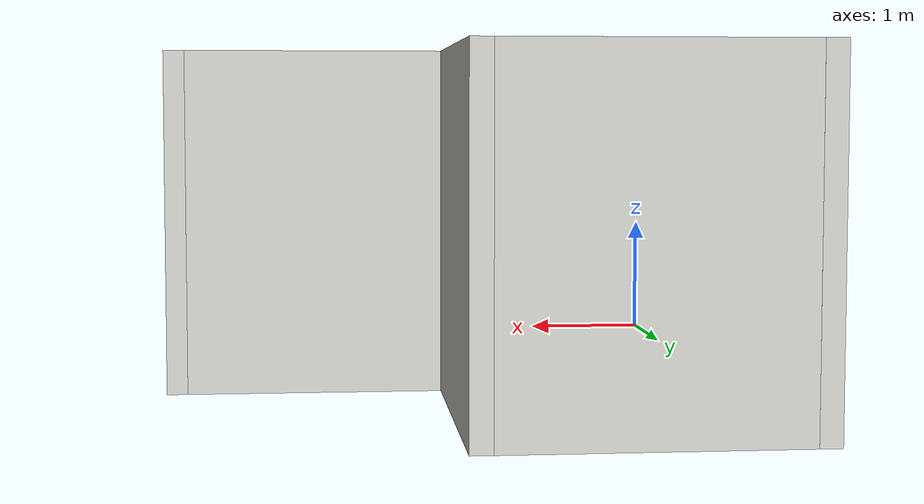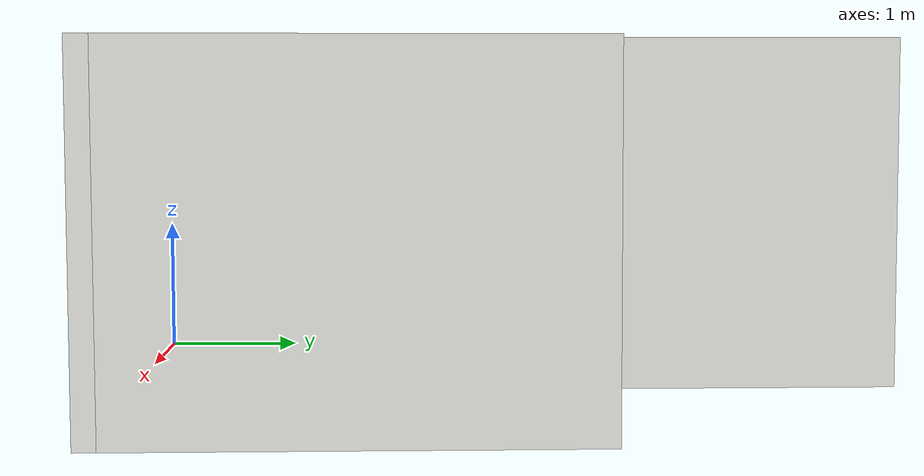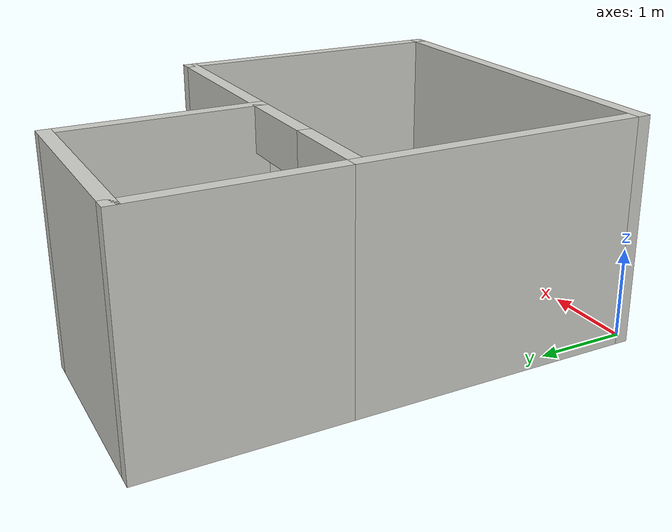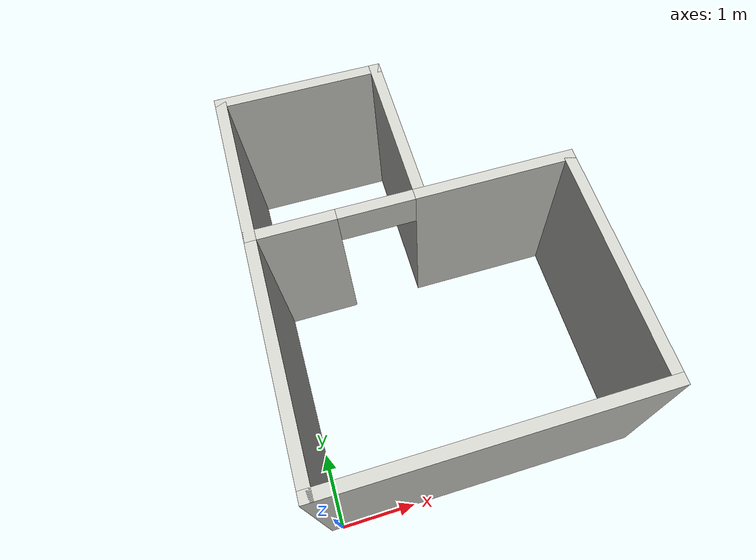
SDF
<?xml version='1.0'?>
<sdf version='1.6'>
  <model name='building'>
    <pose frame=''>2 2.73062 0 0 -0 0</pose>
    <link name='Wall_10'>
      <collision name='Wall_10_Collision'>
        <geometry>
          <box>
            <size>4.3 0.15 2.5</size>
          </box>
        </geometry>
        <pose frame=''>0 0 1.25 0 -0 0</pose>
      </collision>
      <visual name='Wall_10_Visual'>
        <pose frame=''>0 0 1.25 0 -0 0</pose>
        <geometry>
          <box>
            <size>4.3 0.15 2.5</size>
          </box>
        </geometry>
        <material>
          <script>
            <uri>file://media/materials/scripts/gazebo.material</uri>
            <name>Gazebo/CeilingTiled</name>
          </script>
          <ambient>0.533333 0.541176 0.521569 1</ambient>
        </material>
        <meta>
          <layer>0</layer>
        </meta>
      </visual>
      <pose frame=''>0 -2.65563 0 0 -0 3.14159</pose>
    </link>
    <link name='Wall_13'>
      <collision name='Wall_13_Collision'>
        <geometry>
          <box>
            <size>2.3115 0.15 2.5</size>
          </box>
        </geometry>
        <pose frame=''>0 0 1.25 0 -0 0</pose>
      </collision>
      <visual name='Wall_13_Visual'>
        <pose frame=''>0 0 1.25 0 -0 0</pose>
        <geometry>
          <box>
            <size>2.3115 0.15 2.5</size>
          </box>
        </geometry>
        <material>
          <script>
            <uri>file://media/materials/scripts/gazebo.material</uri>
            <name>Gazebo/CeilingTiled</name>
          </script>
          <ambient>0.533333 0.541176 0.521569 1</ambient>
        </material>
        <meta>
          <layer>0</layer>
        </meta>
      </visual>
      <pose frame=''>-2.075 1.57488 0 0 -0 1.5708</pose>
    </link>
    <link name='Wall_15'>
      <collision name='Wall_15_Collision'>
        <geometry>
          <box>
            <size>2.3 0.15 2.5</size>
          </box>
        </geometry>
        <pose frame=''>0 0 1.25 0 -0 0</pose>
      </collision>
      <visual name='Wall_15_Visual'>
        <pose frame=''>0 0 1.25 0 -0 0</pose>
        <geometry>
          <box>
            <size>2.3 0.15 2.5</size>
          </box>
        </geometry>
        <material>
          <script>
            <uri>file://media/materials/scripts/gazebo.material</uri>
            <name>Gazebo/CeilingTiled</name>
          </script>
          <ambient>0.533333 0.541176 0.521569 1</ambient>
        </material>
        <meta>
          <layer>0</layer>
        </meta>
      </visual>
      <pose frame=''>-1 2.65537 0 0 -0 0</pose>
    </link>
    <link name='Wall_17'>
      <collision name='Wall_17_Collision'>
        <geometry>
          <box>
            <size>2.311 0.15 2.5</size>
          </box>
        </geometry>
        <pose frame=''>0 0 1.25 0 -0 0</pose>
      </collision>
      <visual name='Wall_17_Visual'>
        <pose frame=''>0 0 1.25 0 -0 0</pose>
        <geometry>
          <box>
            <size>2.311 0.15 2.5</size>
          </box>
        </geometry>
        <material>
          <script>
            <uri>file://media/materials/scripts/gazebo.material</uri>
            <name>Gazebo/CeilingTiled</name>
          </script>
          <ambient>0.533333 0.541176 0.521569 1</ambient>
        </material>
        <meta>
          <layer>0</layer>
        </meta>
      </visual>
      <pose frame=''>0.075 1.57488 0 0 -0 -1.5708</pose>
    </link>
    <link name='Wall_4'>
      <collision name='Wall_4_Collision'>
        <geometry>
          <box>
            <size>3.3 0.15 2.5</size>
          </box>
        </geometry>
        <pose frame=''>0 0 1.25 0 -0 0</pose>
      </collision>
      <visual name='Wall_4_Visual'>
        <pose frame=''>0 0 1.25 0 -0 0</pose>
        <geometry>
          <box>
            <size>3.3 0.15 2.5</size>
          </box>
        </geometry>
        <material>
          <script>
            <uri>file://media/materials/scripts/gazebo.material</uri>
            <name>Gazebo/CeilingTiled</name>
          </script>
          <ambient>0.533333 0.541176 0.521569 1</ambient>
        </material>
        <meta>
          <layer>0</layer>
        </meta>
      </visual>
      <pose frame=''>-2.075 -1.08062 0 0 -0 1.5708</pose>
    </link>
    <link name='Wall_6'>
      <pose frame=''>0 0.494375 0 0 -0 0</pose>
      <visual name='Wall_6_Visual_0'>
        <pose frame=''>-1.575 0 1.25 0 -0 0</pose>
        <geometry>
          <box>
            <size>1.15 0.15 2.5</size>
          </box>
        </geometry>
        <material>
          <script>
            <uri>file://media/materials/scripts/gazebo.material</uri>
            <name>Gazebo/CeilingTiled</name>
          </script>
          <ambient>0.533333 0.541176 0.521569 1</ambient>
        </material>
        <meta>
          <layer>0</layer>
        </meta>
      </visual>
      <collision name='Wall_6_Collision_0'>
        <geometry>
          <box>
            <size>1.15 0.15 2.5</size>
          </box>
        </geometry>
        <pose frame=''>-1.575 0 1.25 0 -0 0</pose>
      </collision>
      <visual name='Wall_6_Visual_1'>
        <pose frame=''>1.075 0 1.25 0 -0 0</pose>
        <geometry>
          <box>
            <size>2.15 0.15 2.5</size>
          </box>
        </geometry>
        <material>
          <script>
            <uri>file://media/materials/scripts/gazebo.material</uri>
            <name>Gazebo/CeilingTiled</name>
          </script>
          <ambient>0.533333 0.541176 0.521569 1</ambient>
        </material>
        <meta>
          <layer>0</layer>
        </meta>
      </visual>
      <collision name='Wall_6_Collision_1'>
        <geometry>
          <box>
            <size>2.15 0.15 2.5</size>
          </box>
        </geometry>
        <pose frame=''>1.075 0 1.25 0 -0 0</pose>
      </collision>
      <visual name='Wall_6_Visual_2'>
        <pose frame=''>-0.5 0 2.25 0 -0 0</pose>
        <geometry>
          <box>
            <size>1 0.15 0.5</size>
          </box>
        </geometry>
        <material>
          <script>
            <uri>file://media/materials/scripts/gazebo.material</uri>
            <name>Gazebo/CeilingTiled</name>
          </script>
          <ambient>0.533333 0.541176 0.521569 1</ambient>
        </material>
        <meta>
          <layer>0</layer>
        </meta>
      </visual>
      <collision name='Wall_6_Collision_2'>
        <geometry>
          <box>
            <size>1 0.15 0.5</size>
          </box>
        </geometry>
        <pose frame=''>-0.5 0 2.25 0 -0 0</pose>
      </collision>
    </link>
    <link name='Wall_8'>
      <collision name='Wall_8_Collision'>
        <geometry>
          <box>
            <size>3.3 0.15 2.5</size>
          </box>
        </geometry>
        <pose frame=''>0 0 1.25 0 -0 0</pose>
      </collision>
      <visual name='Wall_8_Visual'>
        <pose frame=''>0 0 1.25 0 -0 0</pose>
        <geometry>
          <box>
            <size>3.3 0.15 2.5</size>
          </box>
        </geometry>
        <material>
          <script>
            <uri>file://media/materials/scripts/gazebo.material</uri>
            <name>Gazebo/CeilingTiled</name>
          </script>
          <ambient>0.533333 0.541176 0.521569 1</ambient>
        </material>
        <meta>
          <layer>0</layer>
        </meta>
      </visual>
      <pose frame=''>2.075 -1.08062 0 0 -0 -1.5708</pose>
    </link>
    <static>1</static>
  </model>
</sdf>
